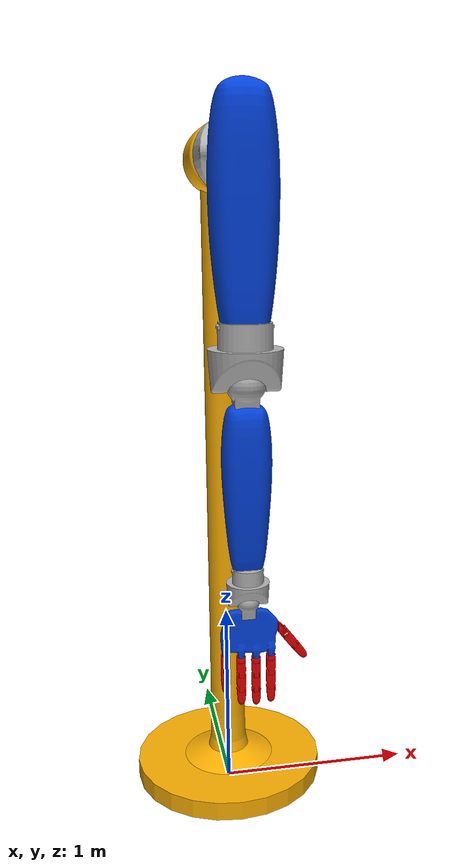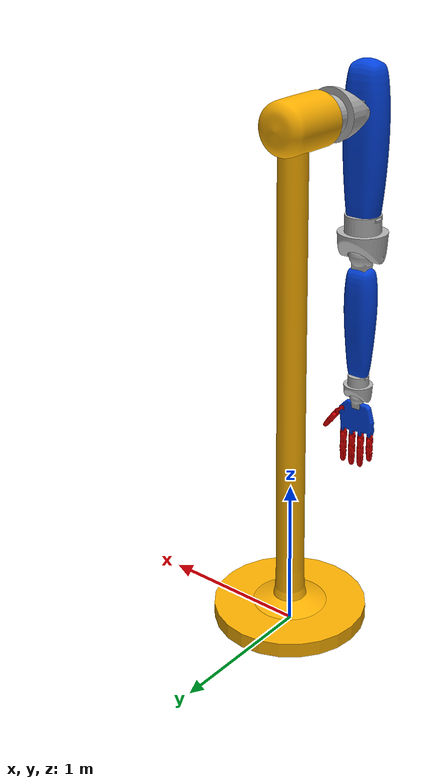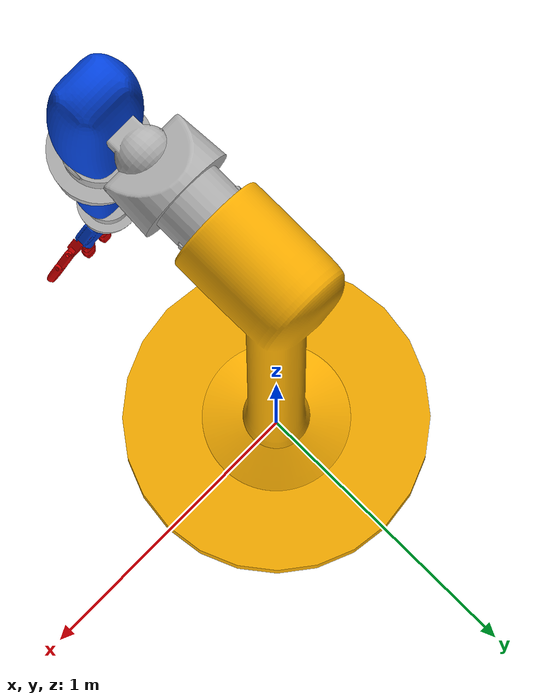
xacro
<?xml version="1.0"?>
<robot xmlns:xacro="http://www.ros.org/wiki/xacro" name="arm">

    <xacro:include filename="$(find arm_description)/urdf/property.urdf.xacro"/>
    <xacro:include filename="$(find arm_description)/urdf/macro.urdf.xacro"/>

    <!-- Link -->
    <link name="world_link"/>

    <link name="base_link">
        <visual>
            <geometry>
                <cylinder radius="0.5" length="0.1"/>
            </geometry>
            <xacro:yelloworange_material/>
        </visual>
        <collision>
            <geometry>
                <cylinder radius="0.5" length="0.1"/>
            </geometry>
        </collision>

    </link>

    <xacro:link name="holder_link" mass="5" mesh_path="package://arm_description/mesh/stand.STL" mesh_material="yelloworange"/>

    <xacro:link name="shoulder_Y_link" mass="1.5" mesh_path="package://arm_description/mesh/joint_shoulder_Y.STL" mesh_material="lightgrey"/>

    <xacro:link name="shoulder_X_link" mass="0.5" mesh_path="package://arm_description/mesh/joint_shoulder_X.STL" mesh_material="lightgrey"/>

    <xacro:link name="shoulder_link" mass="2" mesh_path="package://arm_description/mesh/shoulder.STL" mesh_material="blue"/>

    <xacro:link name="elbow_Z_link" mass="1.5" mesh_path="package://arm_description/mesh/joint_elbow_Z.STL" mesh_material="lightgrey"/>

    <xacro:link name="elbow_X_link" mass="0.5" mesh_path="package://arm_description/mesh/joint_elbow_X.STL" mesh_material="lightgrey"/>

    <xacro:link name="forearm_link" mass="1.5" mesh_path="package://arm_description/mesh/forearm.STL" mesh_material="blue"/>

    <xacro:link name="wrist_Z_link" mass="0.7" mesh_path="package://arm_description/mesh/joint_wrist_Z.STL" mesh_material="lightgrey"/>

    <xacro:link name="wrist_X_link" mass="0.2" mesh_path="package://arm_description/mesh/joint_wrist_X.STL" mesh_material="lightgrey"/>

    <xacro:link name="hand_link" mass="0.2" mesh_path="package://arm_description/mesh/hand.STL" mesh_material="blue"/>

    <xacro:link name="thumb_link" mass="0.01" mesh_path="package://arm_description/mesh/joint_thumb.STL" mesh_material="red"/>

    <xacro:link name="thumb_finger_link" mass="0.01" mesh_path="package://arm_description/mesh/joint_finger_thumb.STL" mesh_material="red"/>

    <xacro:link name="phalanx_thumb_1_link" mass="0.01" mesh_path="package://arm_description/mesh/phalanx_thumb_1.STL" mesh_material="red"/>

    <xacro:link name="phalanx_thumb_2_link" mass="0.01" mesh_path="package://arm_description/mesh/phalanx_thumb_2.STL" mesh_material="red"/>

    <xacro:link name="lit_finger_link" mass="0.01" mesh_path="package://arm_description/mesh/joint_finger.STL" mesh_material="red"/>

    <xacro:link name="phalanx_lit_finger_1_link" mass="0.01" mesh_path="package://arm_description/mesh/phalanx_lit_finger_1.STL" mesh_material="red"/>

    <xacro:link name="phalanx_lit_finger_2_link" mass="0.01" mesh_path="package://arm_description/mesh/phalanx_lit_finger_2.STL" mesh_material="red"/>

    <xacro:link name="phalanx_lit_finger_3_link" mass="0.01" mesh_path="package://arm_description/mesh/phalanx_lit_finger_3.STL" mesh_material="red"/>

    <xacro:link name="ring_finger_link" mass="0.01" mesh_path="package://arm_description/mesh/joint_finger.STL" mesh_material="red"/>

    <xacro:link name="phalanx_ring_finger_1_link" mass="0.01" mesh_path="package://arm_description/mesh/phalanx_finger_1.STL" mesh_material="red"/>

    <xacro:link name="phalanx_ring_finger_2_link" mass="0.01" mesh_path="package://arm_description/mesh/phalanx_finger_2.STL" mesh_material="red"/>

    <xacro:link name="phalanx_ring_finger_3_link" mass="0.01" mesh_path="package://arm_description/mesh/phalanx_finger_3.STL" mesh_material="red"/>

    <xacro:link name="mid_finger_link" mass="0.01" mesh_path="package://arm_description/mesh/joint_finger.STL" mesh_material="red"/>

    <xacro:link name="phalanx_mid_finger_1_link" mass="0.01" mesh_path="package://arm_description/mesh/phalanx_finger_1.STL" mesh_material="red"/>

    <xacro:link name="phalanx_mid_finger_2_link" mass="0.01" mesh_path="package://arm_description/mesh/phalanx_finger_2.STL" mesh_material="red"/>

    <xacro:link name="phalanx_mid_finger_3_link" mass="0.01" mesh_path="package://arm_description/mesh/phalanx_finger_3.STL" mesh_material="red"/>

    <xacro:link name="forefinger_link" mass="0.01" mesh_path="package://arm_description/mesh/joint_finger.STL" mesh_material="red"/>

    <xacro:link name="phalanx_forefinger_1_link" mass="0.01" mesh_path="package://arm_description/mesh/phalanx_finger_1.STL" mesh_material="red"/>

    <xacro:link name="phalanx_forefinger_2_link" mass="0.01" mesh_path="package://arm_description/mesh/phalanx_finger_2.STL" mesh_material="red"/>

    <xacro:link name="phalanx_forefinger_3_link" mass="0.01" mesh_path="package://arm_description/mesh/phalanx_finger_3.STL" mesh_material="red"/>
    <!-- Link end -->

    <!-- Joint -->
    <joint name="virtual_joint" type="fixed">
        <parent link="world_link"/>
        <child link="base_link"/>
        <origin xyz="0 0 0.1" rpy="0 0 0"/>
    </joint>

    <joint name="base_joint" type="fixed">
        <parent link="base_link"/>
        <child link="holder_link"/>
        <origin xyz="0 0 0" rpy="0 0 0"/>
    </joint>

    <joint name="joint_shoulder_Y" type="revolute">
        <parent link="holder_link"/>
        <child link="shoulder_Y_link"/>
        <origin xyz="0 -0.265 3.2" rpy="0 0 0"/>
        <axis xyz="0 1 0"/>
        <limit lower="-${PI/2}" upper="${PI/2}" effort="${effort}" velocity="${velocity}"/>
    </joint>

    <joint name="joint_shoulder_X" type="revolute">
        <parent link="shoulder_Y_link"/>
        <child link="shoulder_X_link"/>
        <origin xyz="0 -0.255 0.0" rpy="0 0 0"/>
        <axis xyz="1 0 0"/>
        <limit lower="-${PI/2}" upper="${PI/2}" effort="${effort}" velocity="${velocity}"/>
    </joint>

    <joint name="joint_shoulder" type="fixed">
        <parent link="shoulder_X_link"/>
        <child link="shoulder_link"/>
        <origin xyz="0 -0.1 0.0" rpy="0 0 0"/>
        <axis xyz="0 0 0"/>
    </joint>

    <joint name="joint_elbow_Z" type="revolute">
        <parent link="shoulder_link"/>
        <child link="elbow_Z_link"/>
        <origin xyz="0 -0.105 -0.7" rpy="0 0 0"/>
        <axis xyz="0 0 1"/>
        <limit lower="-${PI/2}" upper="${PI/2}" effort="${effort}" velocity="${velocity}"/>
    </joint>

    <joint name="joint_elbow_X" type="revolute">
        <parent link="elbow_Z_link"/>
        <child link="elbow_X_link"/>
        <origin xyz="0 -0.003 -0.24" rpy="0 0 0"/>
        <axis xyz="1 0 0"/>
        <limit lower="0" upper="${PI/2}" effort="${effort}" velocity="${velocity}"/>
    </joint>

    <joint name="joint_forearm" type="fixed">
        <parent link="elbow_X_link"/>
        <child link="forearm_link"/>
        <origin xyz="0 0 -0.1" rpy="0 0 0"/>
        <axis xyz="0 0 0"/>
    </joint>

    <joint name="joint_wrist_Z" type="revolute">
        <parent link="forearm_link"/>
        <child link="wrist_Z_link"/>
        <origin xyz="0.0 0.0 -0.75" rpy="0 0 0"/>
        <axis xyz="0 0 1"/>
        <limit lower="-${PI/2}" upper="${PI/2}" effort="${effort}" velocity="${velocity}"/>
    </joint>

    <joint name="joint_wrist_X" type="revolute">
        <parent link="wrist_Z_link"/>
        <child link="wrist_X_link"/>
        <origin xyz="0.0 0.0 -0.15" rpy="0 0 0"/>
        <axis xyz="1 0 0"/>
        <limit lower="-${PI/2}" upper="${PI/2}" effort="${effort}" velocity="${velocity}"/>
    </joint>

    <joint name="joint_hand" type="fixed">
        <parent link="wrist_X_link"/>
        <child link="hand_link"/>
        <origin xyz="0 -0.004 -0.25" rpy="0 0 0"/>
        <axis xyz="0 0 0"/>
    </joint>

    <joint name="joint_thumb" type="revolute">
        <parent link="hand_link"/>
        <child link="thumb_link"/>
        <origin xyz="0.101 0.009 0.11" rpy="0 0 0"/>
        <axis xyz="0 0 1"/>
        <limit lower="0" upper="${PI/2}" effort="${effort}" velocity="${velocity}"/>
    </joint>

    <joint name="joint_finger_thumb" type="revolute">
        <parent link="thumb_link"/>
        <child link="thumb_finger_link"/>
        <origin xyz="0.057 -0.0059 -0.014" rpy="0 -0.65 0"/>
        <axis xyz="0 1 0"/>
        <limit lower="-${PI/35}" upper="${PI/35}" effort="${effort}" velocity="${velocity}"/>
    </joint>

    <joint name="joint_phalanx_thumb_1" type="revolute">
        <parent link="thumb_finger_link"/>
        <child link="phalanx_thumb_1_link"/>
        <origin xyz="0.0 0.0 -0.02" rpy="0 0 0"/>
        <axis xyz="1 0 0"/>
        <limit lower="0" upper="${PI/2}" effort="${effort}" velocity="${velocity}"/>
    </joint>

    <joint name="joint_phalanx_thumb_2" type="revolute">
        <parent link="phalanx_thumb_1_link"/>
        <child link="phalanx_thumb_2_link"/>
        <origin xyz="0.0 0.0 -0.081" rpy="0 0 0"/>
        <axis xyz="1 0 0"/>
        <limit lower="0" upper="${PI/2}" effort="${effort}" velocity="${velocity}"/>
    </joint>

    <joint name="joint_lit_finger" type="revolute">
        <parent link="hand_link"/>
        <child link="lit_finger_link"/>
        <origin xyz="-0.1075 0.005 -0.004" rpy="0 0 0"/>
        <axis xyz="0 1 0"/>
        <limit lower="-${PI/35}" upper="${PI/35}" effort="${effort}" velocity="${velocity}"/>
    </joint>

    <joint name="joint_phalanx_lit_finger_1" type="revolute">
        <parent link="lit_finger_link"/>
        <child link="phalanx_lit_finger_1_link"/>
        <origin xyz="0.0 0.0 -0.025" rpy="0 0 0"/>
        <axis xyz="1 0 0"/>
        <limit lower="0" upper="${PI/2}" effort="${effort}" velocity="${velocity}"/>
    </joint>

    <joint name="joint_phalanx_lit_finger_2" type="revolute">
        <parent link="phalanx_lit_finger_1_link"/>
        <child link="phalanx_lit_finger_2_link"/>
        <origin xyz="0.0 0.0 -0.055" rpy="0 0 0"/>
        <axis xyz="1 0 0"/>
        <limit lower="0" upper="${PI/2}" effort="${effort}" velocity="${velocity}"/>
    </joint>

    <joint name="joint_phalanx_lit_finger_3" type="revolute">
        <parent link="phalanx_lit_finger_2_link"/>
        <child link="phalanx_lit_finger_3_link"/>
        <origin xyz="0.0 0.0 -0.055" rpy="0 0 0"/>
        <axis xyz="1 0 0"/>
        <limit lower="0" upper="${PI/2}" effort="${effort}" velocity="${velocity}"/>
    </joint>

    <joint name="joint_ring_finger" type="revolute">
        <parent link="hand_link"/>
        <child link="ring_finger_link"/>
        <origin xyz="-0.035 0.005 -0.017" rpy="0 0 0"/>
        <axis xyz="0 1 0"/>
        <limit lower="-${PI/35}" upper="${PI/35}" effort="${effort}" velocity="${velocity}"/>
    </joint>

    <joint name="joint_phalanx_ring_finger_1" type="revolute">
        <parent link="ring_finger_link"/>
        <child link="phalanx_ring_finger_1_link"/>
        <origin xyz="0.0 0.0 -0.025" rpy="0 0 0"/>
        <axis xyz="1 0 0"/>
        <limit lower="0" upper="${PI/2}" effort="${effort}" velocity="${velocity}"/>
    </joint>

    <joint name="joint_phalanx_ring_finger_2" type="revolute">
        <parent link="phalanx_ring_finger_1_link"/>
        <child link="phalanx_ring_finger_2_link"/>
        <origin xyz="0.0 0.0 -0.073" rpy="0 0 0"/>
        <axis xyz="1 0 0"/>
        <limit lower="0" upper="${PI/2}" effort="${effort}" velocity="${velocity}"/>
    </joint>

    <joint name="joint_phalanx_ring_finger_3" type="revolute">
        <parent link="phalanx_ring_finger_2_link"/>
        <child link="phalanx_ring_finger_3_link"/>
        <origin xyz="0.0 0.0 -0.073" rpy="0 0 0"/>
        <axis xyz="1 0 0"/>
        <limit lower="0" upper="${PI/2}" effort="${effort}" velocity="${velocity}"/>
    </joint>

    <joint name="joint_mid_finger" type="revolute">
        <parent link="hand_link"/>
        <child link="mid_finger_link"/>
        <origin xyz="0.035 0.005 -0.024" rpy="0 0 0"/>
        <axis xyz="0 1 0"/>
        <limit lower="-${PI/35}" upper="${PI/35}" effort="${effort}" velocity="${velocity}"/>
    </joint>

    <joint name="joint_phalanx_mid_finger_1" type="revolute">
        <parent link="mid_finger_link"/>
        <child link="phalanx_mid_finger_1_link"/>
        <origin xyz="0.0 0.0 -0.025" rpy="0 0 0"/>
        <axis xyz="1 0 0"/>
        <limit lower="0" upper="${PI/2}" effort="${effort}" velocity="${velocity}"/>
    </joint>

    <joint name="joint_phalanx_mid_finger_2" type="revolute">
        <parent link="phalanx_mid_finger_1_link"/>
        <child link="phalanx_mid_finger_2_link"/>
        <origin xyz="0.0 0.0 -0.073" rpy="0 0 0"/>
        <axis xyz="1 0 0"/>
        <limit lower="0" upper="${PI/2}" effort="${effort}" velocity="${velocity}"/>
    </joint>

    <joint name="joint_phalanx_mid_finger_3" type="revolute">
        <parent link="phalanx_mid_finger_2_link"/>
        <child link="phalanx_mid_finger_3_link"/>
        <origin xyz="0.0 0.0 -0.073" rpy="0 0 0"/>
        <axis xyz="1 0 0"/>
        <limit lower="0" upper="${PI/2}" effort="${effort}" velocity="${velocity}"/>
    </joint>

    <joint name="joint_forefinger" type="revolute">
        <parent link="hand_link"/>
        <child link="forefinger_link"/>
        <origin xyz="0.105 0.005 -0.016" rpy="0 0 0"/>
        <axis xyz="0 1 0"/>
        <limit lower="-${PI/35}" upper="${PI/35}" effort="${effort}" velocity="${velocity}"/>
    </joint>

    <joint name="joint_phalanx_forefinger_1" type="revolute">
        <parent link="forefinger_link"/>
        <child link="phalanx_forefinger_1_link"/>
        <origin xyz="0.0 0.0 -0.025" rpy="0 0 0"/>
        <axis xyz="1 0 0"/>
        <limit lower="0" upper="${PI/2}" effort="${effort}" velocity="${velocity}"/>
    </joint>

    <joint name="joint_phalanx_forefinger_2" type="revolute">
        <parent link="phalanx_forefinger_1_link"/>
        <child link="phalanx_forefinger_2_link"/>
        <origin xyz="0.0 0.0 -0.073" rpy="0 0 0"/>
        <axis xyz="1 0 0"/>
        <limit lower="0" upper="${PI/2}" effort="${effort}" velocity="${velocity}"/>
    </joint>

    <joint name="joint_phalanx_forefinger_3" type="revolute">
        <parent link="phalanx_forefinger_2_link"/>
        <child link="phalanx_forefinger_3_link"/>
        <origin xyz="0.0 0.0 -0.073" rpy="0 0 0"/>
        <axis xyz="1 0 0"/>
        <limit lower="0" upper="${PI/2}" effort="${effort}" velocity="${velocity}"/>
    </joint>

    <!-- Joint end -->

    <xacro:default_transmission name="joint_shoulder_Y"/>
    <xacro:default_transmission name="joint_shoulder_X"/>
    <xacro:default_transmission name="joint_elbow_Z"/>
    <xacro:default_transmission name="joint_elbow_X"/>
    <xacro:default_transmission name="joint_wrist_Z"/>
    <xacro:default_transmission name="joint_wrist_X"/>
    <xacro:default_transmission name="joint_thumb"/>
    <xacro:default_transmission name="joint_finger_thumb"/>
    <xacro:default_transmission name="joint_phalanx_thumb_1"/>
    <xacro:default_transmission name="joint_phalanx_thumb_2"/>
    <xacro:default_transmission name="joint_lit_finger"/>
    <xacro:default_transmission name="joint_phalanx_lit_finger_1"/>
    <xacro:default_transmission name="joint_phalanx_lit_finger_2"/>
    <xacro:default_transmission name="joint_phalanx_lit_finger_3"/>
    <xacro:default_transmission name="joint_ring_finger"/>
    <xacro:default_transmission name="joint_phalanx_ring_finger_1"/>
    <xacro:default_transmission name="joint_phalanx_ring_finger_2"/>
    <xacro:default_transmission name="joint_phalanx_ring_finger_3"/>
    <xacro:default_transmission name="joint_mid_finger"/>
    <xacro:default_transmission name="joint_phalanx_mid_finger_1"/>
    <xacro:default_transmission name="joint_phalanx_mid_finger_2"/>
    <xacro:default_transmission name="joint_phalanx_mid_finger_3"/>
    <xacro:default_transmission name="joint_forefinger"/>
    <xacro:default_transmission name="joint_phalanx_forefinger_1"/>
    <xacro:default_transmission name="joint_phalanx_forefinger_2"/>
    <xacro:default_transmission name="joint_phalanx_forefinger_3"/>

    <gazebo>
        <plugin name="gazebo_ros_control" filename="libgazebo_ros_control.so">
            <robotNamespace>/arm</robotNamespace>
            <robotSimType>gazebo_ros_control/DefaultRobotHWSim</robotSimType>
            <legacyModeNS>true</legacyModeNS>
        </plugin>
    </gazebo>

</robot>

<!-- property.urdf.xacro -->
<robot xmlns:xacro="http://www.ros.org/wiki/xacro" name="arm">

    <xacro:property name="PI" value="3.14159"/>
    <xacro:property name="effort" value="30"/>
    <xacro:property name="velocity" value="10"/>

</robot>

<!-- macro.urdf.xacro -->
<robot xmlns:xacro="http://www.ros.org/wiki/xacro" name="arm">

    <!-- Materials -->
    <xacro:macro name="yelloworange_material">
        <material name="yelloworange" >
            <color rgba="0.9882352941176471 0.6901960784313725 0.00392156862745098 1.0" />
        </material>
    </xacro:macro>

    <xacro:macro name="lightgrey_material">
        <material name="lightgrey" >
            <color rgba="0.7 0.7 0.7 1.0" />
        </material>
    </xacro:macro>

    <xacro:macro name="blue_material">
        <material name="blue" >
            <color rgba="0.011764705882352941 0.2627450980392157 0.8745098039215686 1.0" />
        </material>
    </xacro:macro>

    <xacro:macro name="red_material">
        <material name="red" >
            <color rgba="0.8980392156862745 0.0 0.0 1.0" />
        </material>
    </xacro:macro>

    <!-- Links -->
    <xacro:macro name="link" params="name mass mesh_path mesh_material">
        <link name="${name}">
            <inertial>
                <mass value="${mass}"/>
                <inertia ixx="1.0" ixy="0.0" ixz="0.0" iyy="1.0" iyz="0.0" izz="1.0"/>
            </inertial>

            <visual>
                <origin xyz="0.0 0.0 0.0" rpy="0.0 0.0 0.0"/>

                <geometry>
                    <mesh filename="${mesh_path}" scale="0.3 0.3 0.3"/>
                </geometry>

                <xacro:if value="${mesh_material == 'yelloworange'}">
                    <xacro:yelloworange_material/>
                </xacro:if>

                <xacro:if value="${mesh_material == 'lightgrey'}">
                    <xacro:lightgrey_material/>
                </xacro:if>

                <xacro:if value="${mesh_material == 'blue'}">
                    <xacro:blue_material/>
                </xacro:if>

                <xacro:if value="${mesh_material == 'red'}">
                    <xacro:red_material/>
                </xacro:if>

            </visual>

            <collision>
                <origin xyz="0.0 0.0 0.0" rpy="0.0 0.0 0.0"/>

                <geometry>
                    <mesh filename="${mesh_path}" scale="0.3 0.3 0.3"/>
                </geometry>
            </collision>
        </link>
    </xacro:macro>

    <!-- Transmission -->
    <xacro:macro name="default_transmission" params="name">
        <transmission name="transmission_${name}">
            <type>
                transmission_interface/SimpleTransmission
            </type>

            <joint name="${name}">
                <hardwareInterface>hardware_interface/PositionJointInterface</hardwareInterface>
            </joint>

            <actuator name="motor_${name}">
                <hardwareInterface>hardware_interface/PositionJointInterface</hardwareInterface>
                <mechanicalReduction>1</mechanicalReduction>
            </actuator>
        </transmission>
    </xacro:macro>

</robot>
